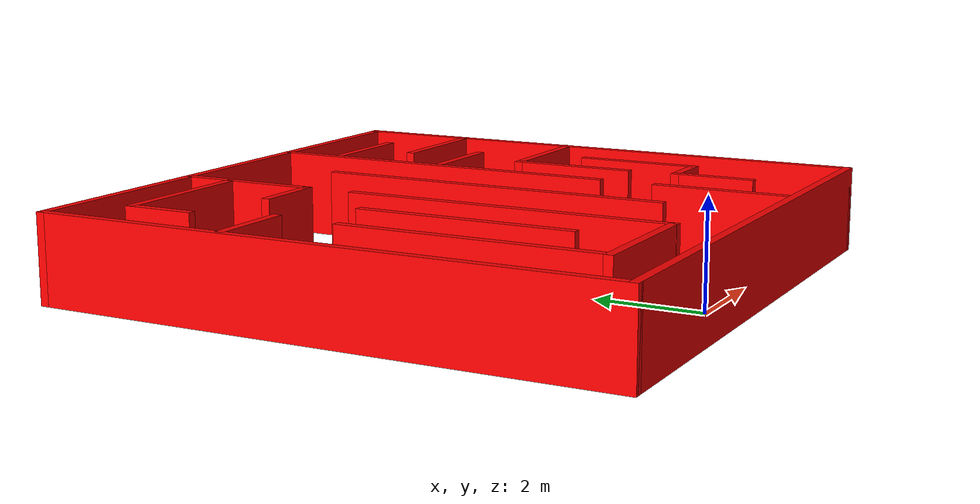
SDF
<?xml version='1.0'?>
<sdf version='1.6'>
  <model name='final_space_1'>
    <pose frame=''>-1.23831 3.655 0 0 -0 0</pose>
    <link name='Wall_0'>
      <collision name='Wall_0_Collision'>
        <geometry>
          <box>
            <size>10 0.15 1.5</size>
          </box>
        </geometry>
        <pose frame=''>0 0 1.25 0 -0 0</pose>
      </collision>
      <visual name='Wall_0_Visual'>
        <pose frame=''>0 0 1.25 0 -0 0</pose>
        <geometry>
          <box>
            <size>10 0.15 1.5</size>
          </box>
        </geometry>
        <material>
          <script>
            <uri>file://media/materials/scripts/gazebo.material</uri>
            <name>Gazebo/Grey</name>
          </script>
          <ambient>1 0 0 1</ambient>
        </material>
      </visual>
      <pose frame=''>-0.006691 -4.925 0 0 -0 0</pose>
    </link>
    <link name='Wall_1'>
      <collision name='Wall_1_Collision'>
        <geometry>
          <box>
            <size>10 0.15 1.5</size>
          </box>
        </geometry>
        <pose frame=''>0 0 1.25 0 -0 0</pose>
      </collision>
      <visual name='Wall_1_Visual'>
        <pose frame=''>0 0 1.25 0 -0 0</pose>
        <geometry>
          <box>
            <size>10 0.15 1.5</size>
          </box>
        </geometry>
        <material>
          <script>
            <uri>file://media/materials/scripts/gazebo.material</uri>
            <name>Gazebo/Grey</name>
          </script>
          <ambient>1 0 0 1</ambient>
        </material>
      </visual>
      <pose frame=''>4.91831 0 0 0 -0 1.5708</pose>
    </link>
    <link name='Wall_11'>
      <collision name='Wall_11_Collision'>
        <geometry>
          <box>
            <size>2.5 0.15 1.5</size>
          </box>
        </geometry>
        <pose frame=''>0 0 1.25 0 -0 0</pose>
      </collision>
      <visual name='Wall_11_Visual'>
        <pose frame=''>0 0 1.25 0 -0 0</pose>
        <geometry>
          <box>
            <size>2.5 0.15 1.5</size>
          </box>
        </geometry>
        <material>
          <script>
            <uri>file://media/materials/scripts/gazebo.material</uri>
            <name>Gazebo/Grey</name>
          </script>
          <ambient>1 0 0 1</ambient>
        </material>
      </visual>
      <pose frame=''>1.75678 -3.73199 0 0 0 -1.5708</pose>
    </link>
    <link name='Wall_13'>
      <collision name='Wall_13_Collision'>
        <geometry>
          <box>
            <size>6.25 0.15 1.5</size>
          </box>
        </geometry>
        <pose frame=''>0 0 1.25 0 -0 0</pose>
      </collision>
      <visual name='Wall_13_Visual'>
        <pose frame=''>0 0 1.25 0 -0 0</pose>
        <geometry>
          <box>
            <size>6.25 0.15 1.5</size>
          </box>
        </geometry>
        <material>
          <script>
            <uri>file://media/materials/scripts/gazebo.material</uri>
            <name>Gazebo/Grey</name>
          </script>
          <ambient>1 0 0 1</ambient>
        </material>
      </visual>
      <pose frame=''>0.278772 -0.139814 0 0 0 -1.5708</pose>
    </link>
    <link name='Wall_15'>
      <collision name='Wall_15_Collision'>
        <geometry>
          <box>
            <size>2.75 0.15 1.5</size>
          </box>
        </geometry>
        <pose frame=''>0 0 1.25 0 -0 0</pose>
      </collision>
      <visual name='Wall_15_Visual'>
        <pose frame=''>0 0 1.25 0 -0 0</pose>
        <geometry>
          <box>
            <size>2.75 0.15 1.5</size>
          </box>
        </geometry>
        <material>
          <script>
            <uri>file://media/materials/scripts/gazebo.material</uri>
            <name>Gazebo/Grey</name>
          </script>
          <ambient>1 0 0 1</ambient>
        </material>
      </visual>
      <pose frame=''>-2.57098 4.04359 0 0 -0 3.14159</pose>
    </link>
    <link name='Wall_16'>
      <collision name='Wall_16_Collision'>
        <geometry>
          <box>
            <size>1.25 0.15 1.5</size>
          </box>
        </geometry>
        <pose frame=''>0 0 1.25 0 -0 0</pose>
      </collision>
      <visual name='Wall_16_Visual'>
        <pose frame=''>0 0 1.25 0 -0 0</pose>
        <geometry>
          <box>
            <size>1.25 0.15 1.5</size>
          </box>
        </geometry>
        <material>
          <script>
            <uri>file://media/materials/scripts/gazebo.material</uri>
            <name>Gazebo/Grey</name>
          </script>
          <ambient>1 0 0 1</ambient>
        </material>
      </visual>
      <pose frame=''>-3.89411 3.49359 0 0 0 -1.5708</pose>
    </link>
    <link name='Wall_18'>
      <collision name='Wall_18_Collision'>
        <geometry>
          <box>
            <size>2.5 0.15 1.5</size>
          </box>
        </geometry>
        <pose frame=''>0 0 1.25 0 -0 0</pose>
      </collision>
      <visual name='Wall_18_Visual'>
        <pose frame=''>0 0 1.25 0 -0 0</pose>
        <geometry>
          <box>
            <size>2.5 0.15 1.5</size>
          </box>
        </geometry>
        <material>
          <script>
            <uri>file://media/materials/scripts/gazebo.material</uri>
            <name>Gazebo/Grey</name>
          </script>
          <ambient>1 0 0 1</ambient>
        </material>
      </visual>
      <pose frame=''>-2.42285 -4.00587 0 0 -0 3.14159</pose>
    </link>
    <link name='Wall_2'>
      <collision name='Wall_2_Collision'>
        <geometry>
          <box>
            <size>10 0.15 1.5</size>
          </box>
        </geometry>
        <pose frame=''>0 0 1.25 0 -0 0</pose>
      </collision>
      <visual name='Wall_2_Visual'>
        <pose frame=''>0 0 1.25 0 -0 0</pose>
        <geometry>
          <box>
            <size>10 0.15 1.5</size>
          </box>
        </geometry>
        <material>
          <script>
            <uri>file://media/materials/scripts/gazebo.material</uri>
            <name>Gazebo/Grey</name>
          </script>
          <ambient>1 0 0 1</ambient>
        </material>
      </visual>
      <pose frame=''>-0.006691 4.925 0 0 -0 3.14159</pose>
    </link>
    <link name='Wall_23'>
      <collision name='Wall_23_Collision'>
        <geometry>
          <box>
            <size>3.75 0.15 1.5</size>
          </box>
        </geometry>
        <pose frame=''>0 0 1.25 0 -0 0</pose>
      </collision>
      <visual name='Wall_23_Visual'>
        <pose frame=''>0 0 1.25 0 -0 0</pose>
        <geometry>
          <box>
            <size>3.75 0.15 1.5</size>
          </box>
        </geometry>
        <material>
          <script>
            <uri>file://media/materials/scripts/gazebo.material</uri>
            <name>Gazebo/Grey</name>
          </script>
          <ambient>1 0 0 1</ambient>
        </material>
      </visual>
      <pose frame=''>-2.40438 -1.08672 0 0 -0 1.5708</pose>
    </link>
    <link name='Wall_25'>
      <collision name='Wall_25_Collision'>
        <geometry>
          <box>
            <size>1.5 0.15 1.5</size>
          </box>
        </geometry>
        <pose frame=''>0 0 1.25 0 -0 0</pose>
      </collision>
      <visual name='Wall_25_Visual'>
        <pose frame=''>0 0 1.25 0 -0 0</pose>
        <geometry>
          <box>
            <size>1.5 0.15 1.5</size>
          </box>
        </geometry>
       <material>
          <script>
            <uri>file://media/materials/scripts/gazebo.material</uri>
            <name>Gazebo/Grey</name>
          </script>
          <ambient>1 0 0 1</ambient>
        </material>
      </visual>
      <pose frame=''>-4.18122 1.59174 0 0 -0 0</pose>
    </link>
    <link name='Wall_3'>
      <collision name='Wall_3_Collision'>
        <geometry>
          <box>
            <size>10 0.15 1.5</size>
          </box>
        </geometry>
        <pose frame=''>0 0 1.25 0 -0 0</pose>
      </collision>
      <visual name='Wall_3_Visual'>
        <pose frame=''>0 0 1.25 0 -0 0</pose>
        <geometry>
          <box>
            <size>10 0.15 1.5</size>
          </box>
        </geometry>
        <material>
          <script>
            <uri>file://media/materials/scripts/gazebo.material</uri>
            <name>Gazebo/Grey</name>
          </script>
          <ambient>1 0 0 1</ambient>
        </material>
      </visual>
      <pose frame=''>-4.93169 0 0 0 0 -1.5708</pose>
    </link>
    <link name='Wall_32'>
      <collision name='Wall_32_Collision'>
        <geometry>
          <box>
            <size>4.5 0.15 1.5</size>
          </box>
        </geometry>
        <pose frame=''>0 0 1.25 0 -0 0</pose>
      </collision>
      <visual name='Wall_32_Visual'>
        <pose frame=''>0 0 1.25 0 -0 0</pose>
        <geometry>
          <box>
            <size>4.5 0.15 1.5</size>
          </box>
        </geometry>
        <material>
          <script>
            <uri>file://media/materials/scripts/gazebo.material</uri>
            <name>Gazebo/Grey</name>
          </script>
          <ambient>1 0 0 1</ambient>
        </material>
      </visual>
      <pose frame=''>-3.58404 -1.80425 0 0 -0 1.5708</pose>
    </link>
    <link name='Wall_34'>
      <collision name='Wall_34_Collision'>
        <geometry>
          <box>
            <size>2 0.15 1.5</size>
          </box>
        </geometry>
        <pose frame=''>0 0 1.25 0 -0 0</pose>
      </collision>
      <visual name='Wall_34_Visual'>
        <pose frame=''>0 0 1.25 0 -0 0</pose>
        <geometry>
          <box>
            <size>2 0.15 1.5</size>
          </box>
        </geometry>
        <material>
          <script>
            <uri>file://media/materials/scripts/gazebo.material</uri>
            <name>Gazebo/Grey</name>
          </script>
          <ambient>1 0 0 1</ambient>
        </material>
      </visual>
      <pose frame=''>2.68413 3.8505 0 0 -0 0</pose>
    </link>
    <link name='Wall_36'>
      <collision name='Wall_36_Collision'>
        <geometry>
          <box>
            <size>1.25 0.15 1.5</size>
          </box>
        </geometry>
        <pose frame=''>0 0 1.25 0 -0 0</pose>
      </collision>
      <visual name='Wall_36_Visual'>
        <pose frame=''>0 0 1.25 0 -0 0</pose>
        <geometry>
          <box>
            <size>1.25 0.15 1.5</size>
          </box>
        </geometry>
        <material>
          <script>
            <uri>file://media/materials/scripts/gazebo.material</uri>
            <name>Gazebo/Grey</name>
          </script>
          <ambient>1 0 0 1</ambient>
        </material>
      </visual>
      <pose frame=''>-1.82333 2.51794 0 0 -0 3.14159</pose>
    </link>
    <link name='Wall_38'>
      <collision name='Wall_38_Collision'>
        <geometry>
          <box>
            <size>2.25 0.15 1.5</size>
          </box>
        </geometry>
        <pose frame=''>0 0 1.25 0 -0 0</pose>
      </collision>
      <visual name='Wall_38_Visual'>
        <pose frame=''>0 0 1.25 0 -0 0</pose>
        <geometry>
          <box>
            <size>2.25 0.15 1.5</size>
          </box>
        </geometry>
        <material>
          <script>
            <uri>file://media/materials/scripts/gazebo.material</uri>
            <name>Gazebo/Grey</name>
          </script>
          <ambient>1 0 0 1</ambient>
        </material>
      </visual>
      <pose frame=''>3.86158 2.84398 0 0 -0 3.14159</pose>
    </link>
    <link name='Wall_41'>
      <collision name='Wall_41_Collision'>
        <geometry>
          <box>
            <size>1.75 0.15 1.5</size>
          </box>
        </geometry>
        <pose frame=''>0 0 1.25 0 -0 0</pose>
      </collision>
      <visual name='Wall_41_Visual'>
        <pose frame=''>0 0 1.25 0 -0 0</pose>
        <geometry>
          <box>
            <size>1.75 0.15 1.5</size>
          </box>
        </geometry>
        <material>
          <script>
            <uri>file://media/materials/scripts/gazebo.material</uri>
            <name>Gazebo/Grey</name>
          </script>
          <ambient>1 0 0 1</ambient>
        </material>
      </visual>
      <pose frame=''>2.57386 1.71762 0 0 -0 0</pose>
    </link>
    <link name='Wall_43'>
      <collision name='Wall_43_Collision'>
        <geometry>
          <box>
            <size>2.25 0.15 1.5</size>
          </box>
        </geometry>
        <pose frame=''>0 0 1.25 0 -0 0</pose>
      </collision>
      <visual name='Wall_43_Visual'>
        <pose frame=''>0 0 1.25 0 -0 0</pose>
        <geometry>
          <box>
            <size>2.25 0.15 1.5</size>
          </box>
        </geometry>
        <material>
          <script>
            <uri>file://media/materials/scripts/gazebo.material</uri>
            <name>Gazebo/Grey</name>
          </script>
          <ambient>1 0 0 1</ambient>
        </material>
      </visual>
      <pose frame=''>3.88169 0.571144 0 0 -0 3.14159</pose>
    </link>
    <link name='Wall_46'>
      <collision name='Wall_46_Collision'>
        <geometry>
          <box>
            <size>2.25 0.15 1.5</size>
          </box>
        </geometry>
        <pose frame=''>0 0 1.25 0 -0 0</pose>
      </collision>
      <visual name='Wall_46_Visual'>
        <pose frame=''>0 0 1.25 0 -0 0</pose>
        <geometry>
          <box>
            <size>2.25 0.15 1.5</size>
          </box>
        </geometry>
        <material>
          <script>
            <uri>file://media/materials/scripts/gazebo.material</uri>
            <name>Gazebo/Grey</name>
          </script>
          <ambient>1 0 0 1</ambient>
        </material>
      </visual>
      <pose frame=''>2.83169 -0.478856 0 0 0 -1.5708</pose>
    </link>
    <link name='Wall_48'>
      <collision name='Wall_48_Collision'>
        <geometry>
          <box>
            <size>2.25 0.15 1.5</size>
          </box>
        </geometry>
        <pose frame=''>0 0 1.25 0 -0 0</pose>
      </collision>
      <visual name='Wall_48_Visual'>
        <pose frame=''>0 0 1.25 0 -0 0</pose>
        <geometry>
          <box>
            <size>2.25 0.15 1.5</size>
          </box>
        </geometry>
        <material>
          <script>
            <uri>file://media/materials/scripts/gazebo.material</uri>
            <name>Gazebo/Grey</name>
          </script>
          <ambient>1 0 0 1</ambient>
        </material>
      </visual>
      <pose frame=''>3.78522 -1.38397 0 0 0 -1.5708</pose>
    </link>
    <link name='Wall_49'>
      <collision name='Wall_49_Collision'>
        <geometry>
          <box>
            <size>1 0.15 1.5</size>
          </box>
        </geometry>
        <pose frame=''>0 0 1.25 0 -0 0</pose>
      </collision>
      <visual name='Wall_49_Visual'>
        <pose frame=''>0 0 1.25 0 -0 0</pose>
        <geometry>
          <box>
            <size>1 0.15 1.5</size>
          </box>
        </geometry>
        <material>
          <script>
            <uri>file://media/materials/scripts/gazebo.material</uri>
            <name>Gazebo/Grey</name>
          </script>
          <ambient>1 0 0 1</ambient>
        </material>
      </visual>
      <pose frame=''>3.36022 -2.43397 0 0 -0 3.14159</pose>
    </link>
    <link name='Wall_5'>
      <collision name='Wall_5_Collision'>
        <geometry>
          <box>
            <size>2.5 0.15 1.5</size>
          </box>
        </geometry>
        <pose frame=''>0 0 1.25 0 -0 0</pose>
      </collision>
      <visual name='Wall_5_Visual'>
        <pose frame=''>0 0 1.25 0 -0 0</pose>
        <geometry>
          <box>
            <size>2.5 0.15 1.5</size>
          </box>
        </geometry>
        <material>
          <script>
            <uri>file://media/materials/scripts/gazebo.material</uri>
            <name>Gazebo/Grey</name>
          </script>
          <ambient>1 0 0 1</ambient>
        </material>
      </visual>
      <pose frame=''>-1.27333 3.69294 0 0 0 -1.5708</pose>
    </link>
    <link name='Wall_50'>
      <collision name='Wall_50_Collision'>
        <geometry>
          <box>
            <size>1.5 0.15 1.5</size>
          </box>
        </geometry>
        <pose frame=''>0 0 1.25 0 -0 0</pose>
      </collision>
      <visual name='Wall_50_Visual'>
        <pose frame=''>0 0 1.25 0 -0 0</pose>
        <geometry>
          <box>
            <size>1.5 0.15 1.5</size>
          </box>
        </geometry>
        <material>
          <script>
            <uri>file://media/materials/scripts/gazebo.material</uri>
            <name>Gazebo/Grey</name>
          </script>
          <ambient>1 0 0 1</ambient>
        </material>
      </visual>
      <pose frame=''>2.93522 -3.10897 0 0 0 -1.5708</pose>
    </link>
    <link name='Wall_7'>
      <collision name='Wall_7_Collision'>
        <geometry>
          <box>
            <size>5.75 0.15 1.5</size>
          </box>
        </geometry>
        <pose frame=''>0 0 1.25 0 -0 0</pose>
      </collision>
      <visual name='Wall_7_Visual'>
        <pose frame=''>0 0 1.25 0 -0 0</pose>
        <geometry>
          <box>
            <size>5.75 0.15 1.5</size>
          </box>
        </geometry>
        <material>
          <script>
            <uri>file://media/materials/scripts/gazebo.material</uri>
            <name>Gazebo/Grey</name>
          </script>
          <ambient>1 0 0 1</ambient>
        </material>
      </visual>
      <pose frame=''>-1.2502 -1.21661 0 0 0 -1.5708</pose>
    </link>
    <link name='Wall_9'>
      <collision name='Wall_9_Collision'>
        <geometry>
          <box>
            <size>6.5 0.15 1.5</size>
          </box>
        </geometry>
        <pose frame=''>0 0 1.25 0 -0 0</pose>
      </collision>
      <visual name='Wall_9_Visual'>
        <pose frame=''>0 0 1.25 0 -0 0</pose>
        <geometry>
          <box>
            <size>6.5 0.15 1.5</size>
          </box>
        </geometry>
        <material>
          <script>
            <uri>file://media/materials/scripts/gazebo.material</uri>
            <name>Gazebo/Grey</name>
          </script>
          <ambient>1 0 0 1</ambient>
        </material>
      </visual>
      <pose frame=''>1.75678 1.71607 0 0 0 -1.5708</pose>
    </link>
    <static>1</static>
  </model>
</sdf>
